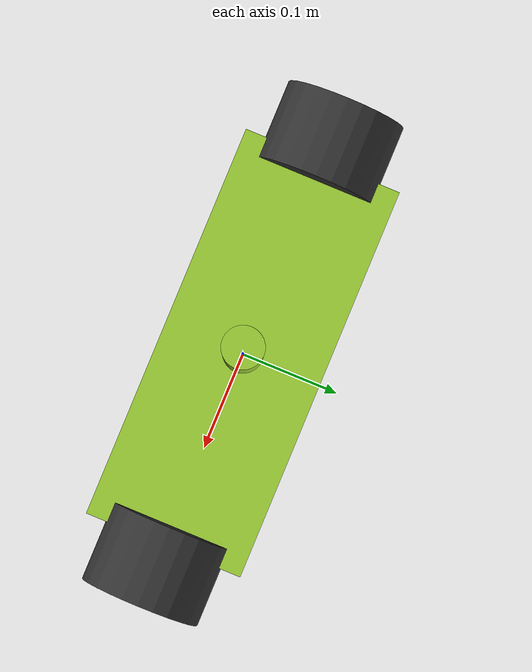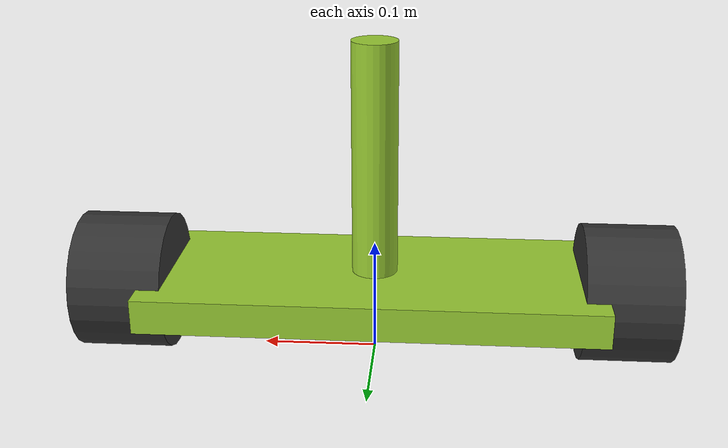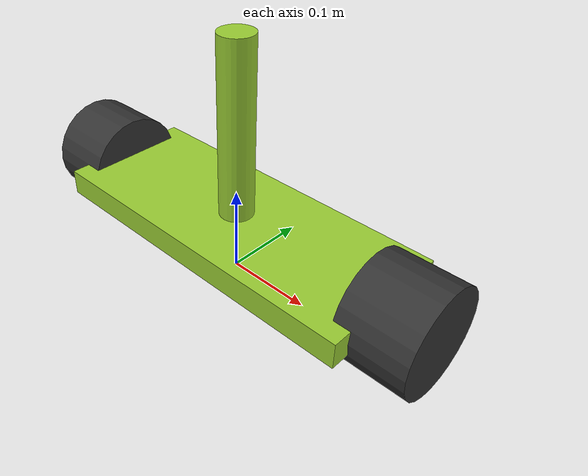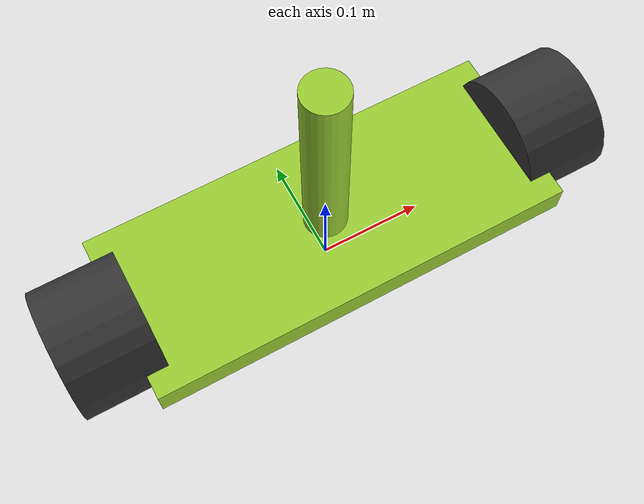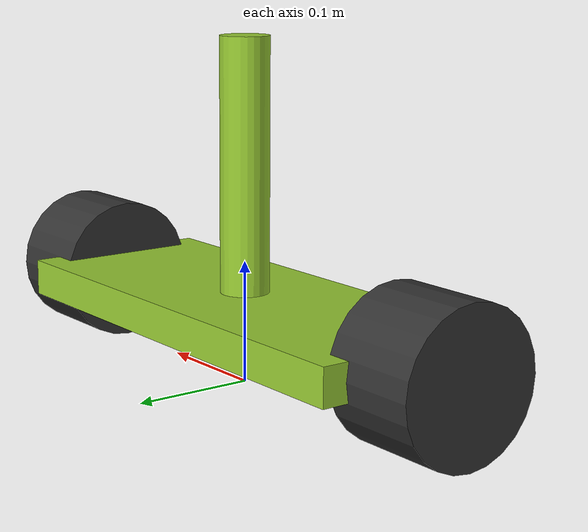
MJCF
<mujoco model="simple_cart">
  <compiler angle="radian" inertiafromgeom="true" />

  <asset>
    <material name="body_mat" rgba="0.6 0.8 0.2 1" />
    <material name="wheel_mat" rgba="0.2 0.2 0.2 1" />
  </asset>

  <worldbody>
    <body name="robot_body" pos="0 0 0.06">
      <freejoint name="robot_body_joint" />

      <!-- 底板：薄长方体，连接左右车轮 -->
      <geom name="base_plate" type="box" size="0.2 0.08 0.015" pos="0 0 0"
            material="body_mat" />

      <!-- 车把：竖直圆柱 -->
      <geom name="handlebar" type="cylinder" size="0.02 0.12" pos="0 0 0.1"
            material="body_mat" />

      <!-- 惯性：总质量约0.8kg，重心略高于底板 -->
      <inertial pos="0 0 0.03" mass="0.8" diaginertia="0.004 0.004 0.002" />

      <!-- 左轮 -->
      <body name="l_wheel" pos="-0.22 0 0">
        <joint name="torso_l_wheel" type="hinge" axis="-1 0 0" damping="0.1" />
        <geom name="l_wheel_geom" type="cylinder" size="0.06 0.04"
              pos="0 0 0" quat="0.707107 0 0.707107 0"
              material="wheel_mat" />
        <inertial pos="0 0 0" mass="0.1" diaginertia="0.0002 0.0001 0.0001" />
      </body>

      <!-- 右轮 -->
      <body name="r_wheel" pos="0.22 0 0">
        <joint name="torso_r_wheel" type="hinge" axis="1 0 0" damping="0.1" />
        <geom name="r_wheel_geom" type="cylinder" size="0.06 0.04"
              pos="0 0 0" quat="0.707107 0 0.707107 0"
              material="wheel_mat" />
        <inertial pos="0 0 0" mass="0.1" diaginertia="0.0002 0.0001 0.0001" />
      </body>
    </body>
  </worldbody>

  <actuator>
    <motor name="motor_l_wheel" joint="torso_l_wheel" gear="1"
           ctrlrange="-8 8" ctrllimited="true" />
    <motor name="motor_r_wheel" joint="torso_r_wheel" gear="1"
           ctrlrange="-8 8" ctrllimited="true" />
  </actuator>
</mujoco>
